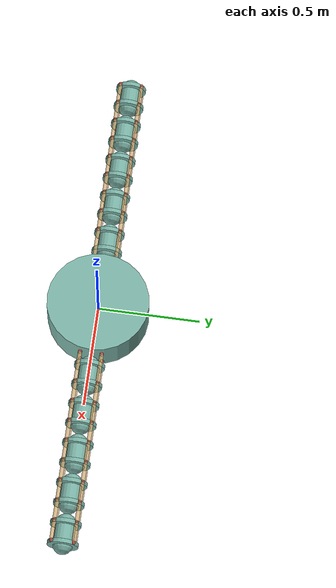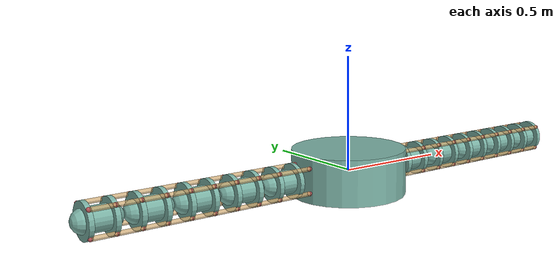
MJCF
<mujoco model="morphology">
  <compiler angle="radian"/>
  <default>
    <default class="/"/>
  </default>
  <worldbody>
    <body name="//unnamed_body_0">
      <body name="central_disc" pos="0 0 0" euler="0 0 0">
        <geom name="central_disc_disc" class="/" type="cylinder" size="0.25 0.10000000000000001" rgba="0.49019607843137253 0.70980392156862748 0.6588235294117647 1" friction="0.001 0.10000000000000001 0.10000000000000001" pos="0 0 0" euler="0 0 0"/>
        <body name="arm_0" pos="0.25 0 0" euler="0 0 0">
          <body name="arm_0_segment_0" pos="0 0 0" euler="0 0 0">
            <geom name="arm_0_segment_0_capsule" class="/" type="capsule" size="0.050000000000000003 0.050000000000000003" rgba="0.49019607843137253 0.70980392156862748 0.6588235294117647 1" pos="0.10000000000000001 0 0" euler="0 1.5707963267948966 0"/>
            <joint name="arm_0_segment_0_in_plane_joint" class="/" type="hinge" pos="0 0 0" axis="0 0 1" limited="true" stiffness="21.673999999999999" range="-0.17453292519943295 0.17453292519943295" damping="2.1674000000000002"/>
            <joint name="arm_0_segment_0_out_of_plane_joint" class="/" type="hinge" pos="0 0 0" axis="0 1 0" limited="true" stiffness="21.673999999999999" range="-0.17453292519943295 0.17453292519943295" damping="2.1674000000000002"/>
            <geom name="arm_0_segment_0_tendon_plate_proximal" class="/" type="cylinder" size="0.075000000000000011 0.01" rgba="0.49019607843137253 0.70980392156862748 0.6588235294117647 1" pos="0.050000000000000003 0 0" euler="0 1.5707963267948966 0"/>
            <site name="arm_0_segment_0_muscle_attachment_point_proximal_0" class="/" type="sphere" rgba="0.71764705882352942 0.33725490196078434 0.34901960784313724 1" size="0.01" pos="0 0.053033008588991078 -0.053033008588991071"/>
            <site name="arm_0_segment_0_muscle_attachment_point_proximal_1" class="/" type="sphere" rgba="0.71764705882352942 0.33725490196078434 0.34901960784313724 1" size="0.01" pos="0 -0.053033008588991071 -0.053033008588991078"/>
            <site name="arm_0_segment_0_muscle_attachment_point_proximal_2" class="/" type="sphere" rgba="0.71764705882352942 0.33725490196078434 0.34901960784313724 1" size="0.01" pos="0 0.053033008588991078 0.053033008588991071"/>
            <site name="arm_0_segment_0_muscle_attachment_point_proximal_3" class="/" type="sphere" rgba="0.71764705882352942 0.33725490196078434 0.34901960784313724 1" size="0.01" pos="0 -0.053033008588991071 0.053033008588991078"/>
            <geom name="arm_0_segment_0_tendon_plate_distal" class="/" type="cylinder" size="0.075000000000000011 0.01" rgba="0.49019607843137253 0.70980392156862748 0.6588235294117647 1" pos="0.15000000000000002 0 0" euler="0 1.5707963267948966 0"/>
            <site name="arm_0_segment_0_muscle_attachment_point_distal_0" class="/" type="sphere" rgba="0.71764705882352942 0.33725490196078434 0.34901960784313724 1" size="0.01" pos="0.15000000000000002 0.053033008588991078 -0.053033008588991071"/>
            <site name="arm_0_segment_0_muscle_attachment_point_distal_1" class="/" type="sphere" rgba="0.71764705882352942 0.33725490196078434 0.34901960784313724 1" size="0.01" pos="0.15000000000000002 -0.053033008588991071 -0.053033008588991078"/>
            <site name="arm_0_segment_0_muscle_attachment_point_distal_2" class="/" type="sphere" rgba="0.71764705882352942 0.33725490196078434 0.34901960784313724 1" size="0.01" pos="0.15000000000000002 0.053033008588991078 0.053033008588991071"/>
            <site name="arm_0_segment_0_muscle_attachment_point_distal_3" class="/" type="sphere" rgba="0.71764705882352942 0.33725490196078434 0.34901960784313724 1" size="0.01" pos="0.15000000000000002 -0.053033008588991071 0.053033008588991078"/>
            <body name="arm_0_segment_1" pos="0.20000000000000001 0 0" euler="0 0 0">
              <geom name="arm_0_segment_1_capsule" class="/" type="capsule" size="0.050000000000000003 0.050000000000000003" rgba="0.49019607843137253 0.70980392156862748 0.6588235294117647 1" pos="0.10000000000000001 0 0" euler="0 1.5707963267948966 0"/>
              <joint name="arm_0_segment_1_in_plane_joint" class="/" type="hinge" pos="0 0 0" axis="0 0 1" limited="true" stiffness="21.673999999999999" range="-0.17453292519943295 0.17453292519943295" damping="2.1674000000000002"/>
              <joint name="arm_0_segment_1_out_of_plane_joint" class="/" type="hinge" pos="0 0 0" axis="0 1 0" limited="true" stiffness="21.673999999999999" range="-0.17453292519943295 0.17453292519943295" damping="2.1674000000000002"/>
              <geom name="arm_0_segment_1_tendon_plate_proximal" class="/" type="cylinder" size="0.075000000000000011 0.01" rgba="0.49019607843137253 0.70980392156862748 0.6588235294117647 1" pos="0.050000000000000003 0 0" euler="0 1.5707963267948966 0"/>
              <site name="arm_0_segment_1_muscle_attachment_point_proximal_0" class="/" type="sphere" rgba="0.71764705882352942 0.33725490196078434 0.34901960784313724 1" size="0.01" pos="0.050000000000000003 0.053033008588991078 -0.053033008588991071"/>
              <site name="arm_0_segment_1_muscle_attachment_point_proximal_1" class="/" type="sphere" rgba="0.71764705882352942 0.33725490196078434 0.34901960784313724 1" size="0.01" pos="0.050000000000000003 -0.053033008588991071 -0.053033008588991078"/>
              <site name="arm_0_segment_1_muscle_attachment_point_proximal_2" class="/" type="sphere" rgba="0.71764705882352942 0.33725490196078434 0.34901960784313724 1" size="0.01" pos="0.050000000000000003 0.053033008588991078 0.053033008588991071"/>
              <site name="arm_0_segment_1_muscle_attachment_point_proximal_3" class="/" type="sphere" rgba="0.71764705882352942 0.33725490196078434 0.34901960784313724 1" size="0.01" pos="0.050000000000000003 -0.053033008588991071 0.053033008588991078"/>
              <geom name="arm_0_segment_1_tendon_plate_distal" class="/" type="cylinder" size="0.075000000000000011 0.01" rgba="0.49019607843137253 0.70980392156862748 0.6588235294117647 1" pos="0.15000000000000002 0 0" euler="0 1.5707963267948966 0"/>
              <site name="arm_0_segment_1_muscle_attachment_point_distal_0" class="/" type="sphere" rgba="0.71764705882352942 0.33725490196078434 0.34901960784313724 1" size="0.01" pos="0.15000000000000002 0.053033008588991078 -0.053033008588991071"/>
              <site name="arm_0_segment_1_muscle_attachment_point_distal_1" class="/" type="sphere" rgba="0.71764705882352942 0.33725490196078434 0.34901960784313724 1" size="0.01" pos="0.15000000000000002 -0.053033008588991071 -0.053033008588991078"/>
              <site name="arm_0_segment_1_muscle_attachment_point_distal_2" class="/" type="sphere" rgba="0.71764705882352942 0.33725490196078434 0.34901960784313724 1" size="0.01" pos="0.15000000000000002 0.053033008588991078 0.053033008588991071"/>
              <site name="arm_0_segment_1_muscle_attachment_point_distal_3" class="/" type="sphere" rgba="0.71764705882352942 0.33725490196078434 0.34901960784313724 1" size="0.01" pos="0.15000000000000002 -0.053033008588991071 0.053033008588991078"/>
              <body name="arm_0_segment_2" pos="0.20000000000000001 0 0" euler="0 0 0">
                <geom name="arm_0_segment_2_capsule" class="/" type="capsule" size="0.050000000000000003 0.050000000000000003" rgba="0.49019607843137253 0.70980392156862748 0.6588235294117647 1" pos="0.10000000000000001 0 0" euler="0 1.5707963267948966 0"/>
                <joint name="arm_0_segment_2_in_plane_joint" class="/" type="hinge" pos="0 0 0" axis="0 0 1" limited="true" stiffness="21.673999999999999" range="-0.17453292519943295 0.17453292519943295" damping="2.1674000000000002"/>
                <joint name="arm_0_segment_2_out_of_plane_joint" class="/" type="hinge" pos="0 0 0" axis="0 1 0" limited="true" stiffness="21.673999999999999" range="-0.17453292519943295 0.17453292519943295" damping="2.1674000000000002"/>
                <geom name="arm_0_segment_2_tendon_plate_proximal" class="/" type="cylinder" size="0.075000000000000011 0.01" rgba="0.49019607843137253 0.70980392156862748 0.6588235294117647 1" pos="0.050000000000000003 0 0" euler="0 1.5707963267948966 0"/>
                <site name="arm_0_segment_2_muscle_attachment_point_proximal_0" class="/" type="sphere" rgba="0.71764705882352942 0.33725490196078434 0.34901960784313724 1" size="0.01" pos="0.050000000000000003 0.053033008588991078 -0.053033008588991071"/>
                <site name="arm_0_segment_2_muscle_attachment_point_proximal_1" class="/" type="sphere" rgba="0.71764705882352942 0.33725490196078434 0.34901960784313724 1" size="0.01" pos="0.050000000000000003 -0.053033008588991071 -0.053033008588991078"/>
                <site name="arm_0_segment_2_muscle_attachment_point_proximal_2" class="/" type="sphere" rgba="0.71764705882352942 0.33725490196078434 0.34901960784313724 1" size="0.01" pos="0.050000000000000003 0.053033008588991078 0.053033008588991071"/>
                <site name="arm_0_segment_2_muscle_attachment_point_proximal_3" class="/" type="sphere" rgba="0.71764705882352942 0.33725490196078434 0.34901960784313724 1" size="0.01" pos="0.050000000000000003 -0.053033008588991071 0.053033008588991078"/>
                <geom name="arm_0_segment_2_tendon_plate_distal" class="/" type="cylinder" size="0.075000000000000011 0.01" rgba="0.49019607843137253 0.70980392156862748 0.6588235294117647 1" pos="0.15000000000000002 0 0" euler="0 1.5707963267948966 0"/>
                <site name="arm_0_segment_2_muscle_attachment_point_distal_0" class="/" type="sphere" rgba="0.71764705882352942 0.33725490196078434 0.34901960784313724 1" size="0.01" pos="0.15000000000000002 0.053033008588991078 -0.053033008588991071"/>
                <site name="arm_0_segment_2_muscle_attachment_point_distal_1" class="/" type="sphere" rgba="0.71764705882352942 0.33725490196078434 0.34901960784313724 1" size="0.01" pos="0.15000000000000002 -0.053033008588991071 -0.053033008588991078"/>
                <site name="arm_0_segment_2_muscle_attachment_point_distal_2" class="/" type="sphere" rgba="0.71764705882352942 0.33725490196078434 0.34901960784313724 1" size="0.01" pos="0.15000000000000002 0.053033008588991078 0.053033008588991071"/>
                <site name="arm_0_segment_2_muscle_attachment_point_distal_3" class="/" type="sphere" rgba="0.71764705882352942 0.33725490196078434 0.34901960784313724 1" size="0.01" pos="0.15000000000000002 -0.053033008588991071 0.053033008588991078"/>
                <body name="arm_0_segment_3" pos="0.20000000000000001 0 0" euler="0 0 0">
                  <geom name="arm_0_segment_3_capsule" class="/" type="capsule" size="0.050000000000000003 0.050000000000000003" rgba="0.49019607843137253 0.70980392156862748 0.6588235294117647 1" pos="0.10000000000000001 0 0" euler="0 1.5707963267948966 0"/>
                  <joint name="arm_0_segment_3_in_plane_joint" class="/" type="hinge" pos="0 0 0" axis="0 0 1" limited="true" stiffness="21.673999999999999" range="-0.17453292519943295 0.17453292519943295" damping="2.1674000000000002"/>
                  <joint name="arm_0_segment_3_out_of_plane_joint" class="/" type="hinge" pos="0 0 0" axis="0 1 0" limited="true" stiffness="21.673999999999999" range="-0.17453292519943295 0.17453292519943295" damping="2.1674000000000002"/>
                  <geom name="arm_0_segment_3_tendon_plate_proximal" class="/" type="cylinder" size="0.075000000000000011 0.01" rgba="0.49019607843137253 0.70980392156862748 0.6588235294117647 1" pos="0.050000000000000003 0 0" euler="0 1.5707963267948966 0"/>
                  <site name="arm_0_segment_3_muscle_attachment_point_proximal_0" class="/" type="sphere" rgba="0.71764705882352942 0.33725490196078434 0.34901960784313724 1" size="0.01" pos="0.050000000000000003 0.053033008588991078 -0.053033008588991071"/>
                  <site name="arm_0_segment_3_muscle_attachment_point_proximal_1" class="/" type="sphere" rgba="0.71764705882352942 0.33725490196078434 0.34901960784313724 1" size="0.01" pos="0.050000000000000003 -0.053033008588991071 -0.053033008588991078"/>
                  <site name="arm_0_segment_3_muscle_attachment_point_proximal_2" class="/" type="sphere" rgba="0.71764705882352942 0.33725490196078434 0.34901960784313724 1" size="0.01" pos="0.050000000000000003 0.053033008588991078 0.053033008588991071"/>
                  <site name="arm_0_segment_3_muscle_attachment_point_proximal_3" class="/" type="sphere" rgba="0.71764705882352942 0.33725490196078434 0.34901960784313724 1" size="0.01" pos="0.050000000000000003 -0.053033008588991071 0.053033008588991078"/>
                  <geom name="arm_0_segment_3_tendon_plate_distal" class="/" type="cylinder" size="0.075000000000000011 0.01" rgba="0.49019607843137253 0.70980392156862748 0.6588235294117647 1" pos="0.15000000000000002 0 0" euler="0 1.5707963267948966 0"/>
                  <site name="arm_0_segment_3_muscle_attachment_point_distal_0" class="/" type="sphere" rgba="0.71764705882352942 0.33725490196078434 0.34901960784313724 1" size="0.01" pos="0.15000000000000002 0.053033008588991078 -0.053033008588991071"/>
                  <site name="arm_0_segment_3_muscle_attachment_point_distal_1" class="/" type="sphere" rgba="0.71764705882352942 0.33725490196078434 0.34901960784313724 1" size="0.01" pos="0.15000000000000002 -0.053033008588991071 -0.053033008588991078"/>
                  <site name="arm_0_segment_3_muscle_attachment_point_distal_2" class="/" type="sphere" rgba="0.71764705882352942 0.33725490196078434 0.34901960784313724 1" size="0.01" pos="0.15000000000000002 0.053033008588991078 0.053033008588991071"/>
                  <site name="arm_0_segment_3_muscle_attachment_point_distal_3" class="/" type="sphere" rgba="0.71764705882352942 0.33725490196078434 0.34901960784313724 1" size="0.01" pos="0.15000000000000002 -0.053033008588991071 0.053033008588991078"/>
                  <body name="arm_0_segment_4" pos="0.20000000000000001 0 0" euler="0 0 0">
                    <geom name="arm_0_segment_4_capsule" class="/" type="capsule" size="0.050000000000000003 0.050000000000000003" rgba="0.49019607843137253 0.70980392156862748 0.6588235294117647 1" pos="0.10000000000000001 0 0" euler="0 1.5707963267948966 0"/>
                    <joint name="arm_0_segment_4_in_plane_joint" class="/" type="hinge" pos="0 0 0" axis="0 0 1" limited="true" stiffness="21.673999999999999" range="-0.17453292519943295 0.17453292519943295" damping="2.1674000000000002"/>
                    <joint name="arm_0_segment_4_out_of_plane_joint" class="/" type="hinge" pos="0 0 0" axis="0 1 0" limited="true" stiffness="21.673999999999999" range="-0.17453292519943295 0.17453292519943295" damping="2.1674000000000002"/>
                    <geom name="arm_0_segment_4_tendon_plate_proximal" class="/" type="cylinder" size="0.075000000000000011 0.01" rgba="0.49019607843137253 0.70980392156862748 0.6588235294117647 1" pos="0.050000000000000003 0 0" euler="0 1.5707963267948966 0"/>
                    <site name="arm_0_segment_4_muscle_attachment_point_proximal_0" class="/" type="sphere" rgba="0.71764705882352942 0.33725490196078434 0.34901960784313724 1" size="0.01" pos="0.050000000000000003 0.053033008588991078 -0.053033008588991071"/>
                    <site name="arm_0_segment_4_muscle_attachment_point_proximal_1" class="/" type="sphere" rgba="0.71764705882352942 0.33725490196078434 0.34901960784313724 1" size="0.01" pos="0.050000000000000003 -0.053033008588991071 -0.053033008588991078"/>
                    <site name="arm_0_segment_4_muscle_attachment_point_proximal_2" class="/" type="sphere" rgba="0.71764705882352942 0.33725490196078434 0.34901960784313724 1" size="0.01" pos="0.050000000000000003 0.053033008588991078 0.053033008588991071"/>
                    <site name="arm_0_segment_4_muscle_attachment_point_proximal_3" class="/" type="sphere" rgba="0.71764705882352942 0.33725490196078434 0.34901960784313724 1" size="0.01" pos="0.050000000000000003 -0.053033008588991071 0.053033008588991078"/>
                    <geom name="arm_0_segment_4_tendon_plate_distal" class="/" type="cylinder" size="0.075000000000000011 0.01" rgba="0.49019607843137253 0.70980392156862748 0.6588235294117647 1" pos="0.15000000000000002 0 0" euler="0 1.5707963267948966 0"/>
                    <site name="arm_0_segment_4_muscle_attachment_point_distal_0" class="/" type="sphere" rgba="0.71764705882352942 0.33725490196078434 0.34901960784313724 1" size="0.01" pos="0.15000000000000002 0.053033008588991078 -0.053033008588991071"/>
                    <site name="arm_0_segment_4_muscle_attachment_point_distal_1" class="/" type="sphere" rgba="0.71764705882352942 0.33725490196078434 0.34901960784313724 1" size="0.01" pos="0.15000000000000002 -0.053033008588991071 -0.053033008588991078"/>
                    <site name="arm_0_segment_4_muscle_attachment_point_distal_2" class="/" type="sphere" rgba="0.71764705882352942 0.33725490196078434 0.34901960784313724 1" size="0.01" pos="0.15000000000000002 0.053033008588991078 0.053033008588991071"/>
                    <site name="arm_0_segment_4_muscle_attachment_point_distal_3" class="/" type="sphere" rgba="0.71764705882352942 0.33725490196078434 0.34901960784313724 1" size="0.01" pos="0.15000000000000002 -0.053033008588991071 0.053033008588991078"/>
                    <site name="arm_0_segment_4_cartesian_end_effector" class="/" pos="0.10000000000000001 0 0"/>
                  </body>
                </body>
              </body>
            </body>
          </body>
          <site name="arm_0_muscle_attachment_point_0" class="/" type="sphere" rgba="0.71764705882352942 0.33725490196078434 0.34901960784313724 1" size="0.01" pos="0 0.053033008588991078 -0.053033008588991071"/>
          <site name="arm_0_muscle_attachment_point_1" class="/" type="sphere" rgba="0.71764705882352942 0.33725490196078434 0.34901960784313724 1" size="0.01" pos="0 -0.053033008588991071 -0.053033008588991078"/>
          <site name="arm_0_muscle_attachment_point_2" class="/" type="sphere" rgba="0.71764705882352942 0.33725490196078434 0.34901960784313724 1" size="0.01" pos="0 0.053033008588991078 0.053033008588991071"/>
          <site name="arm_0_muscle_attachment_point_3" class="/" type="sphere" rgba="0.71764705882352942 0.33725490196078434 0.34901960784313724 1" size="0.01" pos="0 -0.053033008588991071 0.053033008588991078"/>
          <site name="arm_0_cartesian_reference" class="/" euler="-0 -0 -0"/>
        </body>
        <body name="arm_1" pos="-0.25 3.061616997868383e-17 0" euler="0 0 3.1415926535897931">
          <body name="arm_1_segment_0" pos="0 0 0" euler="0 0 0">
            <geom name="arm_1_segment_0_capsule" class="/" type="capsule" size="0.050000000000000003 0.050000000000000003" rgba="0.49019607843137253 0.70980392156862748 0.6588235294117647 1" pos="0.10000000000000001 0 0" euler="0 1.5707963267948966 0"/>
            <joint name="arm_1_segment_0_in_plane_joint" class="/" type="hinge" pos="0 0 0" axis="0 0 1" limited="true" stiffness="21.673999999999999" range="-0.17453292519943295 0.17453292519943295" damping="2.1674000000000002"/>
            <joint name="arm_1_segment_0_out_of_plane_joint" class="/" type="hinge" pos="0 0 0" axis="0 1 0" limited="true" stiffness="21.673999999999999" range="-0.17453292519943295 0.17453292519943295" damping="2.1674000000000002"/>
            <geom name="arm_1_segment_0_tendon_plate_proximal" class="/" type="cylinder" size="0.075000000000000011 0.01" rgba="0.49019607843137253 0.70980392156862748 0.6588235294117647 1" pos="0.050000000000000003 0 0" euler="0 1.5707963267948966 0"/>
            <site name="arm_1_segment_0_muscle_attachment_point_proximal_0" class="/" type="sphere" rgba="0.71764705882352942 0.33725490196078434 0.34901960784313724 1" size="0.01" pos="0 0.053033008588991078 -0.053033008588991071"/>
            <site name="arm_1_segment_0_muscle_attachment_point_proximal_1" class="/" type="sphere" rgba="0.71764705882352942 0.33725490196078434 0.34901960784313724 1" size="0.01" pos="0 -0.053033008588991071 -0.053033008588991078"/>
            <site name="arm_1_segment_0_muscle_attachment_point_proximal_2" class="/" type="sphere" rgba="0.71764705882352942 0.33725490196078434 0.34901960784313724 1" size="0.01" pos="0 0.053033008588991078 0.053033008588991071"/>
            <site name="arm_1_segment_0_muscle_attachment_point_proximal_3" class="/" type="sphere" rgba="0.71764705882352942 0.33725490196078434 0.34901960784313724 1" size="0.01" pos="0 -0.053033008588991071 0.053033008588991078"/>
            <geom name="arm_1_segment_0_tendon_plate_distal" class="/" type="cylinder" size="0.075000000000000011 0.01" rgba="0.49019607843137253 0.70980392156862748 0.6588235294117647 1" pos="0.15000000000000002 0 0" euler="0 1.5707963267948966 0"/>
            <site name="arm_1_segment_0_muscle_attachment_point_distal_0" class="/" type="sphere" rgba="0.71764705882352942 0.33725490196078434 0.34901960784313724 1" size="0.01" pos="0.15000000000000002 0.053033008588991078 -0.053033008588991071"/>
            <site name="arm_1_segment_0_muscle_attachment_point_distal_1" class="/" type="sphere" rgba="0.71764705882352942 0.33725490196078434 0.34901960784313724 1" size="0.01" pos="0.15000000000000002 -0.053033008588991071 -0.053033008588991078"/>
            <site name="arm_1_segment_0_muscle_attachment_point_distal_2" class="/" type="sphere" rgba="0.71764705882352942 0.33725490196078434 0.34901960784313724 1" size="0.01" pos="0.15000000000000002 0.053033008588991078 0.053033008588991071"/>
            <site name="arm_1_segment_0_muscle_attachment_point_distal_3" class="/" type="sphere" rgba="0.71764705882352942 0.33725490196078434 0.34901960784313724 1" size="0.01" pos="0.15000000000000002 -0.053033008588991071 0.053033008588991078"/>
            <body name="arm_1_segment_1" pos="0.20000000000000001 0 0" euler="0 0 0">
              <geom name="arm_1_segment_1_capsule" class="/" type="capsule" size="0.050000000000000003 0.050000000000000003" rgba="0.49019607843137253 0.70980392156862748 0.6588235294117647 1" pos="0.10000000000000001 0 0" euler="0 1.5707963267948966 0"/>
              <joint name="arm_1_segment_1_in_plane_joint" class="/" type="hinge" pos="0 0 0" axis="0 0 1" limited="true" stiffness="21.673999999999999" range="-0.17453292519943295 0.17453292519943295" damping="2.1674000000000002"/>
              <joint name="arm_1_segment_1_out_of_plane_joint" class="/" type="hinge" pos="0 0 0" axis="0 1 0" limited="true" stiffness="21.673999999999999" range="-0.17453292519943295 0.17453292519943295" damping="2.1674000000000002"/>
              <geom name="arm_1_segment_1_tendon_plate_proximal" class="/" type="cylinder" size="0.075000000000000011 0.01" rgba="0.49019607843137253 0.70980392156862748 0.6588235294117647 1" pos="0.050000000000000003 0 0" euler="0 1.5707963267948966 0"/>
              <site name="arm_1_segment_1_muscle_attachment_point_proximal_0" class="/" type="sphere" rgba="0.71764705882352942 0.33725490196078434 0.34901960784313724 1" size="0.01" pos="0.050000000000000003 0.053033008588991078 -0.053033008588991071"/>
              <site name="arm_1_segment_1_muscle_attachment_point_proximal_1" class="/" type="sphere" rgba="0.71764705882352942 0.33725490196078434 0.34901960784313724 1" size="0.01" pos="0.050000000000000003 -0.053033008588991071 -0.053033008588991078"/>
              <site name="arm_1_segment_1_muscle_attachment_point_proximal_2" class="/" type="sphere" rgba="0.71764705882352942 0.33725490196078434 0.34901960784313724 1" size="0.01" pos="0.050000000000000003 0.053033008588991078 0.053033008588991071"/>
              <site name="arm_1_segment_1_muscle_attachment_point_proximal_3" class="/" type="sphere" rgba="0.71764705882352942 0.33725490196078434 0.34901960784313724 1" size="0.01" pos="0.050000000000000003 -0.053033008588991071 0.053033008588991078"/>
              <geom name="arm_1_segment_1_tendon_plate_distal" class="/" type="cylinder" size="0.075000000000000011 0.01" rgba="0.49019607843137253 0.70980392156862748 0.6588235294117647 1" pos="0.15000000000000002 0 0" euler="0 1.5707963267948966 0"/>
              <site name="arm_1_segment_1_muscle_attachment_point_distal_0" class="/" type="sphere" rgba="0.71764705882352942 0.33725490196078434 0.34901960784313724 1" size="0.01" pos="0.15000000000000002 0.053033008588991078 -0.053033008588991071"/>
              <site name="arm_1_segment_1_muscle_attachment_point_distal_1" class="/" type="sphere" rgba="0.71764705882352942 0.33725490196078434 0.34901960784313724 1" size="0.01" pos="0.15000000000000002 -0.053033008588991071 -0.053033008588991078"/>
              <site name="arm_1_segment_1_muscle_attachment_point_distal_2" class="/" type="sphere" rgba="0.71764705882352942 0.33725490196078434 0.34901960784313724 1" size="0.01" pos="0.15000000000000002 0.053033008588991078 0.053033008588991071"/>
              <site name="arm_1_segment_1_muscle_attachment_point_distal_3" class="/" type="sphere" rgba="0.71764705882352942 0.33725490196078434 0.34901960784313724 1" size="0.01" pos="0.15000000000000002 -0.053033008588991071 0.053033008588991078"/>
              <body name="arm_1_segment_2" pos="0.20000000000000001 0 0" euler="0 0 0">
                <geom name="arm_1_segment_2_capsule" class="/" type="capsule" size="0.050000000000000003 0.050000000000000003" rgba="0.49019607843137253 0.70980392156862748 0.6588235294117647 1" pos="0.10000000000000001 0 0" euler="0 1.5707963267948966 0"/>
                <joint name="arm_1_segment_2_in_plane_joint" class="/" type="hinge" pos="0 0 0" axis="0 0 1" limited="true" stiffness="21.673999999999999" range="-0.17453292519943295 0.17453292519943295" damping="2.1674000000000002"/>
                <joint name="arm_1_segment_2_out_of_plane_joint" class="/" type="hinge" pos="0 0 0" axis="0 1 0" limited="true" stiffness="21.673999999999999" range="-0.17453292519943295 0.17453292519943295" damping="2.1674000000000002"/>
                <geom name="arm_1_segment_2_tendon_plate_proximal" class="/" type="cylinder" size="0.075000000000000011 0.01" rgba="0.49019607843137253 0.70980392156862748 0.6588235294117647 1" pos="0.050000000000000003 0 0" euler="0 1.5707963267948966 0"/>
                <site name="arm_1_segment_2_muscle_attachment_point_proximal_0" class="/" type="sphere" rgba="0.71764705882352942 0.33725490196078434 0.34901960784313724 1" size="0.01" pos="0.050000000000000003 0.053033008588991078 -0.053033008588991071"/>
                <site name="arm_1_segment_2_muscle_attachment_point_proximal_1" class="/" type="sphere" rgba="0.71764705882352942 0.33725490196078434 0.34901960784313724 1" size="0.01" pos="0.050000000000000003 -0.053033008588991071 -0.053033008588991078"/>
                <site name="arm_1_segment_2_muscle_attachment_point_proximal_2" class="/" type="sphere" rgba="0.71764705882352942 0.33725490196078434 0.34901960784313724 1" size="0.01" pos="0.050000000000000003 0.053033008588991078 0.053033008588991071"/>
                <site name="arm_1_segment_2_muscle_attachment_point_proximal_3" class="/" type="sphere" rgba="0.71764705882352942 0.33725490196078434 0.34901960784313724 1" size="0.01" pos="0.050000000000000003 -0.053033008588991071 0.053033008588991078"/>
                <geom name="arm_1_segment_2_tendon_plate_distal" class="/" type="cylinder" size="0.075000000000000011 0.01" rgba="0.49019607843137253 0.70980392156862748 0.6588235294117647 1" pos="0.15000000000000002 0 0" euler="0 1.5707963267948966 0"/>
                <site name="arm_1_segment_2_muscle_attachment_point_distal_0" class="/" type="sphere" rgba="0.71764705882352942 0.33725490196078434 0.34901960784313724 1" size="0.01" pos="0.15000000000000002 0.053033008588991078 -0.053033008588991071"/>
                <site name="arm_1_segment_2_muscle_attachment_point_distal_1" class="/" type="sphere" rgba="0.71764705882352942 0.33725490196078434 0.34901960784313724 1" size="0.01" pos="0.15000000000000002 -0.053033008588991071 -0.053033008588991078"/>
                <site name="arm_1_segment_2_muscle_attachment_point_distal_2" class="/" type="sphere" rgba="0.71764705882352942 0.33725490196078434 0.34901960784313724 1" size="0.01" pos="0.15000000000000002 0.053033008588991078 0.053033008588991071"/>
                <site name="arm_1_segment_2_muscle_attachment_point_distal_3" class="/" type="sphere" rgba="0.71764705882352942 0.33725490196078434 0.34901960784313724 1" size="0.01" pos="0.15000000000000002 -0.053033008588991071 0.053033008588991078"/>
                <body name="arm_1_segment_3" pos="0.20000000000000001 0 0" euler="0 0 0">
                  <geom name="arm_1_segment_3_capsule" class="/" type="capsule" size="0.050000000000000003 0.050000000000000003" rgba="0.49019607843137253 0.70980392156862748 0.6588235294117647 1" pos="0.10000000000000001 0 0" euler="0 1.5707963267948966 0"/>
                  <joint name="arm_1_segment_3_in_plane_joint" class="/" type="hinge" pos="0 0 0" axis="0 0 1" limited="true" stiffness="21.673999999999999" range="-0.17453292519943295 0.17453292519943295" damping="2.1674000000000002"/>
                  <joint name="arm_1_segment_3_out_of_plane_joint" class="/" type="hinge" pos="0 0 0" axis="0 1 0" limited="true" stiffness="21.673999999999999" range="-0.17453292519943295 0.17453292519943295" damping="2.1674000000000002"/>
                  <geom name="arm_1_segment_3_tendon_plate_proximal" class="/" type="cylinder" size="0.075000000000000011 0.01" rgba="0.49019607843137253 0.70980392156862748 0.6588235294117647 1" pos="0.050000000000000003 0 0" euler="0 1.5707963267948966 0"/>
                  <site name="arm_1_segment_3_muscle_attachment_point_proximal_0" class="/" type="sphere" rgba="0.71764705882352942 0.33725490196078434 0.34901960784313724 1" size="0.01" pos="0.050000000000000003 0.053033008588991078 -0.053033008588991071"/>
                  <site name="arm_1_segment_3_muscle_attachment_point_proximal_1" class="/" type="sphere" rgba="0.71764705882352942 0.33725490196078434 0.34901960784313724 1" size="0.01" pos="0.050000000000000003 -0.053033008588991071 -0.053033008588991078"/>
                  <site name="arm_1_segment_3_muscle_attachment_point_proximal_2" class="/" type="sphere" rgba="0.71764705882352942 0.33725490196078434 0.34901960784313724 1" size="0.01" pos="0.050000000000000003 0.053033008588991078 0.053033008588991071"/>
                  <site name="arm_1_segment_3_muscle_attachment_point_proximal_3" class="/" type="sphere" rgba="0.71764705882352942 0.33725490196078434 0.34901960784313724 1" size="0.01" pos="0.050000000000000003 -0.053033008588991071 0.053033008588991078"/>
                  <geom name="arm_1_segment_3_tendon_plate_distal" class="/" type="cylinder" size="0.075000000000000011 0.01" rgba="0.49019607843137253 0.70980392156862748 0.6588235294117647 1" pos="0.15000000000000002 0 0" euler="0 1.5707963267948966 0"/>
                  <site name="arm_1_segment_3_muscle_attachment_point_distal_0" class="/" type="sphere" rgba="0.71764705882352942 0.33725490196078434 0.34901960784313724 1" size="0.01" pos="0.15000000000000002 0.053033008588991078 -0.053033008588991071"/>
                  <site name="arm_1_segment_3_muscle_attachment_point_distal_1" class="/" type="sphere" rgba="0.71764705882352942 0.33725490196078434 0.34901960784313724 1" size="0.01" pos="0.15000000000000002 -0.053033008588991071 -0.053033008588991078"/>
                  <site name="arm_1_segment_3_muscle_attachment_point_distal_2" class="/" type="sphere" rgba="0.71764705882352942 0.33725490196078434 0.34901960784313724 1" size="0.01" pos="0.15000000000000002 0.053033008588991078 0.053033008588991071"/>
                  <site name="arm_1_segment_3_muscle_attachment_point_distal_3" class="/" type="sphere" rgba="0.71764705882352942 0.33725490196078434 0.34901960784313724 1" size="0.01" pos="0.15000000000000002 -0.053033008588991071 0.053033008588991078"/>
                  <body name="arm_1_segment_4" pos="0.20000000000000001 0 0" euler="0 0 0">
                    <geom name="arm_1_segment_4_capsule" class="/" type="capsule" size="0.050000000000000003 0.050000000000000003" rgba="0.49019607843137253 0.70980392156862748 0.6588235294117647 1" pos="0.10000000000000001 0 0" euler="0 1.5707963267948966 0"/>
                    <joint name="arm_1_segment_4_in_plane_joint" class="/" type="hinge" pos="0 0 0" axis="0 0 1" limited="true" stiffness="21.673999999999999" range="-0.17453292519943295 0.17453292519943295" damping="2.1674000000000002"/>
                    <joint name="arm_1_segment_4_out_of_plane_joint" class="/" type="hinge" pos="0 0 0" axis="0 1 0" limited="true" stiffness="21.673999999999999" range="-0.17453292519943295 0.17453292519943295" damping="2.1674000000000002"/>
                    <geom name="arm_1_segment_4_tendon_plate_proximal" class="/" type="cylinder" size="0.075000000000000011 0.01" rgba="0.49019607843137253 0.70980392156862748 0.6588235294117647 1" pos="0.050000000000000003 0 0" euler="0 1.5707963267948966 0"/>
                    <site name="arm_1_segment_4_muscle_attachment_point_proximal_0" class="/" type="sphere" rgba="0.71764705882352942 0.33725490196078434 0.34901960784313724 1" size="0.01" pos="0.050000000000000003 0.053033008588991078 -0.053033008588991071"/>
                    <site name="arm_1_segment_4_muscle_attachment_point_proximal_1" class="/" type="sphere" rgba="0.71764705882352942 0.33725490196078434 0.34901960784313724 1" size="0.01" pos="0.050000000000000003 -0.053033008588991071 -0.053033008588991078"/>
                    <site name="arm_1_segment_4_muscle_attachment_point_proximal_2" class="/" type="sphere" rgba="0.71764705882352942 0.33725490196078434 0.34901960784313724 1" size="0.01" pos="0.050000000000000003 0.053033008588991078 0.053033008588991071"/>
                    <site name="arm_1_segment_4_muscle_attachment_point_proximal_3" class="/" type="sphere" rgba="0.71764705882352942 0.33725490196078434 0.34901960784313724 1" size="0.01" pos="0.050000000000000003 -0.053033008588991071 0.053033008588991078"/>
                    <geom name="arm_1_segment_4_tendon_plate_distal" class="/" type="cylinder" size="0.075000000000000011 0.01" rgba="0.49019607843137253 0.70980392156862748 0.6588235294117647 1" pos="0.15000000000000002 0 0" euler="0 1.5707963267948966 0"/>
                    <site name="arm_1_segment_4_muscle_attachment_point_distal_0" class="/" type="sphere" rgba="0.71764705882352942 0.33725490196078434 0.34901960784313724 1" size="0.01" pos="0.15000000000000002 0.053033008588991078 -0.053033008588991071"/>
                    <site name="arm_1_segment_4_muscle_attachment_point_distal_1" class="/" type="sphere" rgba="0.71764705882352942 0.33725490196078434 0.34901960784313724 1" size="0.01" pos="0.15000000000000002 -0.053033008588991071 -0.053033008588991078"/>
                    <site name="arm_1_segment_4_muscle_attachment_point_distal_2" class="/" type="sphere" rgba="0.71764705882352942 0.33725490196078434 0.34901960784313724 1" size="0.01" pos="0.15000000000000002 0.053033008588991078 0.053033008588991071"/>
                    <site name="arm_1_segment_4_muscle_attachment_point_distal_3" class="/" type="sphere" rgba="0.71764705882352942 0.33725490196078434 0.34901960784313724 1" size="0.01" pos="0.15000000000000002 -0.053033008588991071 0.053033008588991078"/>
                    <site name="arm_1_segment_4_cartesian_end_effector" class="/" pos="0.10000000000000001 0 0"/>
                  </body>
                </body>
              </body>
            </body>
          </body>
          <site name="arm_1_muscle_attachment_point_0" class="/" type="sphere" rgba="0.71764705882352942 0.33725490196078434 0.34901960784313724 1" size="0.01" pos="0 0.053033008588991078 -0.053033008588991071"/>
          <site name="arm_1_muscle_attachment_point_1" class="/" type="sphere" rgba="0.71764705882352942 0.33725490196078434 0.34901960784313724 1" size="0.01" pos="0 -0.053033008588991071 -0.053033008588991078"/>
          <site name="arm_1_muscle_attachment_point_2" class="/" type="sphere" rgba="0.71764705882352942 0.33725490196078434 0.34901960784313724 1" size="0.01" pos="0 0.053033008588991078 0.053033008588991071"/>
          <site name="arm_1_muscle_attachment_point_3" class="/" type="sphere" rgba="0.71764705882352942 0.33725490196078434 0.34901960784313724 1" size="0.01" pos="0 -0.053033008588991071 0.053033008588991078"/>
          <site name="arm_1_cartesian_reference" class="/" euler="-0 -0 -3.1415926535897931"/>
        </body>
      </body>
    </body>
  </worldbody>
  <tendon>
    <spatial name="arm_0_tendon_0" class="/" limited="true" range="0.47500000000000009 2.8500000000000005" width="0.01" rgba="0.83921568627450982 0.68235294117647061 0.44705882352941179 0.74509803921568629">
      <site site="arm_0_muscle_attachment_point_0"/>
      <site site="arm_0_segment_0_muscle_attachment_point_proximal_0"/>
      <site site="arm_0_segment_0_muscle_attachment_point_distal_0"/>
      <site site="arm_0_segment_1_muscle_attachment_point_proximal_0"/>
      <site site="arm_0_segment_1_muscle_attachment_point_distal_0"/>
      <site site="arm_0_segment_2_muscle_attachment_point_proximal_0"/>
      <site site="arm_0_segment_2_muscle_attachment_point_distal_0"/>
      <site site="arm_0_segment_3_muscle_attachment_point_proximal_0"/>
      <site site="arm_0_segment_3_muscle_attachment_point_distal_0"/>
      <site site="arm_0_segment_4_muscle_attachment_point_proximal_0"/>
      <site site="arm_0_segment_4_muscle_attachment_point_distal_0"/>
    </spatial>
    <spatial name="arm_0_tendon_1" class="/" limited="true" range="0.47500000000000009 2.8500000000000005" width="0.01" rgba="0.83921568627450982 0.68235294117647061 0.44705882352941179 0.74509803921568629">
      <site site="arm_0_muscle_attachment_point_1"/>
      <site site="arm_0_segment_0_muscle_attachment_point_proximal_1"/>
      <site site="arm_0_segment_0_muscle_attachment_point_distal_1"/>
      <site site="arm_0_segment_1_muscle_attachment_point_proximal_1"/>
      <site site="arm_0_segment_1_muscle_attachment_point_distal_1"/>
      <site site="arm_0_segment_2_muscle_attachment_point_proximal_1"/>
      <site site="arm_0_segment_2_muscle_attachment_point_distal_1"/>
      <site site="arm_0_segment_3_muscle_attachment_point_proximal_1"/>
      <site site="arm_0_segment_3_muscle_attachment_point_distal_1"/>
      <site site="arm_0_segment_4_muscle_attachment_point_proximal_1"/>
      <site site="arm_0_segment_4_muscle_attachment_point_distal_1"/>
    </spatial>
    <spatial name="arm_0_tendon_2" class="/" limited="true" range="0.47500000000000009 2.8500000000000005" width="0.01" rgba="0.83921568627450982 0.68235294117647061 0.44705882352941179 0.74509803921568629">
      <site site="arm_0_muscle_attachment_point_2"/>
      <site site="arm_0_segment_0_muscle_attachment_point_proximal_2"/>
      <site site="arm_0_segment_0_muscle_attachment_point_distal_2"/>
      <site site="arm_0_segment_1_muscle_attachment_point_proximal_2"/>
      <site site="arm_0_segment_1_muscle_attachment_point_distal_2"/>
      <site site="arm_0_segment_2_muscle_attachment_point_proximal_2"/>
      <site site="arm_0_segment_2_muscle_attachment_point_distal_2"/>
      <site site="arm_0_segment_3_muscle_attachment_point_proximal_2"/>
      <site site="arm_0_segment_3_muscle_attachment_point_distal_2"/>
      <site site="arm_0_segment_4_muscle_attachment_point_proximal_2"/>
      <site site="arm_0_segment_4_muscle_attachment_point_distal_2"/>
    </spatial>
    <spatial name="arm_0_tendon_3" class="/" limited="true" range="0.47500000000000009 2.8500000000000005" width="0.01" rgba="0.83921568627450982 0.68235294117647061 0.44705882352941179 0.74509803921568629">
      <site site="arm_0_muscle_attachment_point_3"/>
      <site site="arm_0_segment_0_muscle_attachment_point_proximal_3"/>
      <site site="arm_0_segment_0_muscle_attachment_point_distal_3"/>
      <site site="arm_0_segment_1_muscle_attachment_point_proximal_3"/>
      <site site="arm_0_segment_1_muscle_attachment_point_distal_3"/>
      <site site="arm_0_segment_2_muscle_attachment_point_proximal_3"/>
      <site site="arm_0_segment_2_muscle_attachment_point_distal_3"/>
      <site site="arm_0_segment_3_muscle_attachment_point_proximal_3"/>
      <site site="arm_0_segment_3_muscle_attachment_point_distal_3"/>
      <site site="arm_0_segment_4_muscle_attachment_point_proximal_3"/>
      <site site="arm_0_segment_4_muscle_attachment_point_distal_3"/>
    </spatial>
    <spatial name="arm_1_tendon_0" class="/" limited="true" range="0.47500000000000009 2.8500000000000005" width="0.01" rgba="0.83921568627450982 0.68235294117647061 0.44705882352941179 0.74509803921568629">
      <site site="arm_1_muscle_attachment_point_0"/>
      <site site="arm_1_segment_0_muscle_attachment_point_proximal_0"/>
      <site site="arm_1_segment_0_muscle_attachment_point_distal_0"/>
      <site site="arm_1_segment_1_muscle_attachment_point_proximal_0"/>
      <site site="arm_1_segment_1_muscle_attachment_point_distal_0"/>
      <site site="arm_1_segment_2_muscle_attachment_point_proximal_0"/>
      <site site="arm_1_segment_2_muscle_attachment_point_distal_0"/>
      <site site="arm_1_segment_3_muscle_attachment_point_proximal_0"/>
      <site site="arm_1_segment_3_muscle_attachment_point_distal_0"/>
      <site site="arm_1_segment_4_muscle_attachment_point_proximal_0"/>
      <site site="arm_1_segment_4_muscle_attachment_point_distal_0"/>
    </spatial>
    <spatial name="arm_1_tendon_1" class="/" limited="true" range="0.47500000000000009 2.8500000000000005" width="0.01" rgba="0.83921568627450982 0.68235294117647061 0.44705882352941179 0.74509803921568629">
      <site site="arm_1_muscle_attachment_point_1"/>
      <site site="arm_1_segment_0_muscle_attachment_point_proximal_1"/>
      <site site="arm_1_segment_0_muscle_attachment_point_distal_1"/>
      <site site="arm_1_segment_1_muscle_attachment_point_proximal_1"/>
      <site site="arm_1_segment_1_muscle_attachment_point_distal_1"/>
      <site site="arm_1_segment_2_muscle_attachment_point_proximal_1"/>
      <site site="arm_1_segment_2_muscle_attachment_point_distal_1"/>
      <site site="arm_1_segment_3_muscle_attachment_point_proximal_1"/>
      <site site="arm_1_segment_3_muscle_attachment_point_distal_1"/>
      <site site="arm_1_segment_4_muscle_attachment_point_proximal_1"/>
      <site site="arm_1_segment_4_muscle_attachment_point_distal_1"/>
    </spatial>
    <spatial name="arm_1_tendon_2" class="/" limited="true" range="0.47500000000000009 2.8500000000000005" width="0.01" rgba="0.83921568627450982 0.68235294117647061 0.44705882352941179 0.74509803921568629">
      <site site="arm_1_muscle_attachment_point_2"/>
      <site site="arm_1_segment_0_muscle_attachment_point_proximal_2"/>
      <site site="arm_1_segment_0_muscle_attachment_point_distal_2"/>
      <site site="arm_1_segment_1_muscle_attachment_point_proximal_2"/>
      <site site="arm_1_segment_1_muscle_attachment_point_distal_2"/>
      <site site="arm_1_segment_2_muscle_attachment_point_proximal_2"/>
      <site site="arm_1_segment_2_muscle_attachment_point_distal_2"/>
      <site site="arm_1_segment_3_muscle_attachment_point_proximal_2"/>
      <site site="arm_1_segment_3_muscle_attachment_point_distal_2"/>
      <site site="arm_1_segment_4_muscle_attachment_point_proximal_2"/>
      <site site="arm_1_segment_4_muscle_attachment_point_distal_2"/>
    </spatial>
    <spatial name="arm_1_tendon_3" class="/" limited="true" range="0.47500000000000009 2.8500000000000005" width="0.01" rgba="0.83921568627450982 0.68235294117647061 0.44705882352941179 0.74509803921568629">
      <site site="arm_1_muscle_attachment_point_3"/>
      <site site="arm_1_segment_0_muscle_attachment_point_proximal_3"/>
      <site site="arm_1_segment_0_muscle_attachment_point_distal_3"/>
      <site site="arm_1_segment_1_muscle_attachment_point_proximal_3"/>
      <site site="arm_1_segment_1_muscle_attachment_point_distal_3"/>
      <site site="arm_1_segment_2_muscle_attachment_point_proximal_3"/>
      <site site="arm_1_segment_2_muscle_attachment_point_distal_3"/>
      <site site="arm_1_segment_3_muscle_attachment_point_proximal_3"/>
      <site site="arm_1_segment_3_muscle_attachment_point_distal_3"/>
      <site site="arm_1_segment_4_muscle_attachment_point_proximal_3"/>
      <site site="arm_1_segment_4_muscle_attachment_point_distal_3"/>
    </spatial>
  </tendon>
  <actuator>
    <position name="arm_0_cartesian_y" class="/" ctrllimited="true" ctrlrange="-1 1" gear="0 1 0 0 0 0" site="arm_0_segment_4_cartesian_end_effector" refsite="arm_0_cartesian_reference" kp="100"/>
    <position name="arm_0_cartesian_z" class="/" ctrllimited="true" ctrlrange="-1 1" gear="0 0 1 0 0 0" site="arm_0_segment_4_cartesian_end_effector" refsite="arm_0_cartesian_reference" kp="100"/>
    <position name="arm_1_cartesian_y" class="/" ctrllimited="true" ctrlrange="-1 1" gear="0 1 0 0 0 0" site="arm_1_segment_4_cartesian_end_effector" refsite="arm_1_cartesian_reference" kp="100"/>
    <position name="arm_1_cartesian_z" class="/" ctrllimited="true" ctrlrange="-1 1" gear="0 0 1 0 0 0" site="arm_1_segment_4_cartesian_end_effector" refsite="arm_1_cartesian_reference" kp="100"/>
  </actuator>
  <sensor>
    <framepos name="central_disc_framepos" objtype="geom" objname="central_disc_disc"/>
    <framequat name="central_disc_framequat" objtype="geom" objname="central_disc_disc"/>
    <framepos name="arm_0_segment_4_end_effector_local_pos" objtype="geom" objname="arm_0_segment_4_capsule" reftype="geom" refname="central_disc_disc"/>
    <framepos name="arm_1_segment_4_end_effector_local_pos" objtype="geom" objname="arm_1_segment_4_capsule" reftype="geom" refname="central_disc_disc"/>
  </sensor>
</mujoco>
